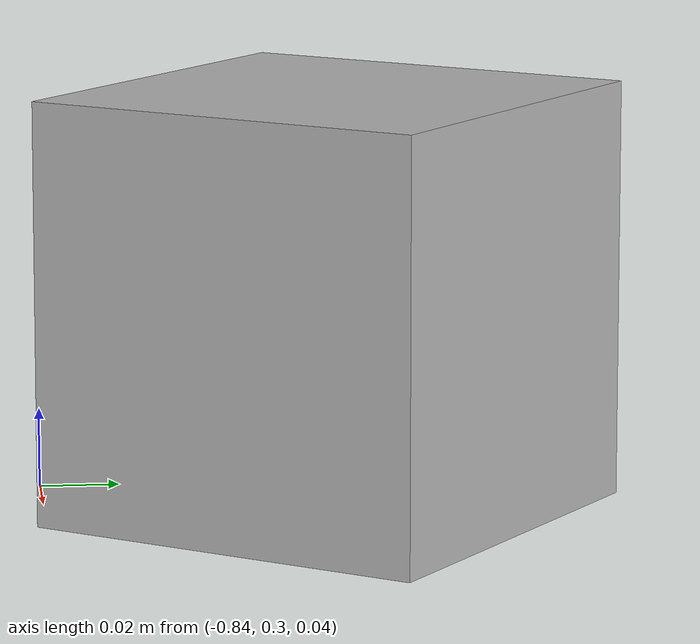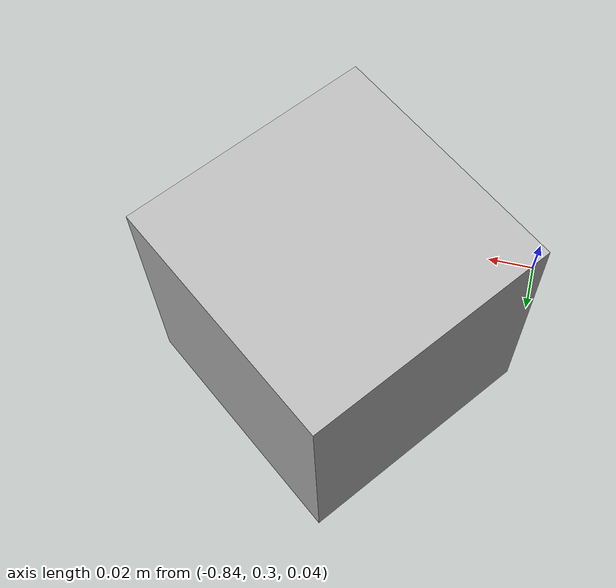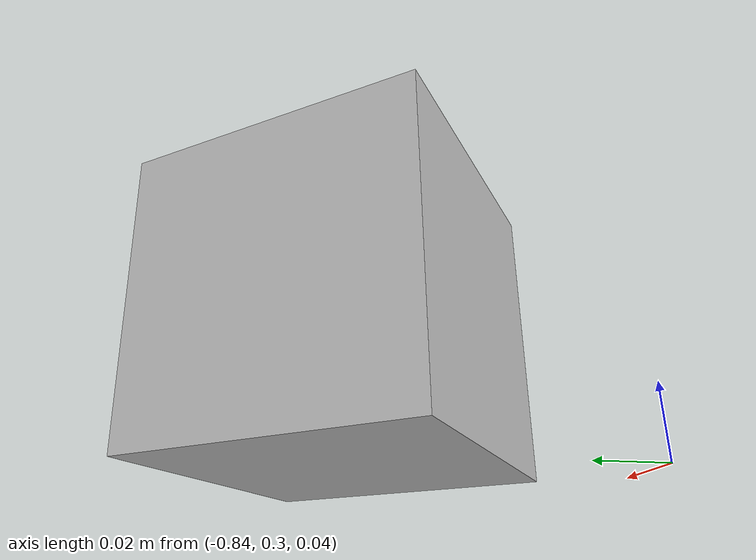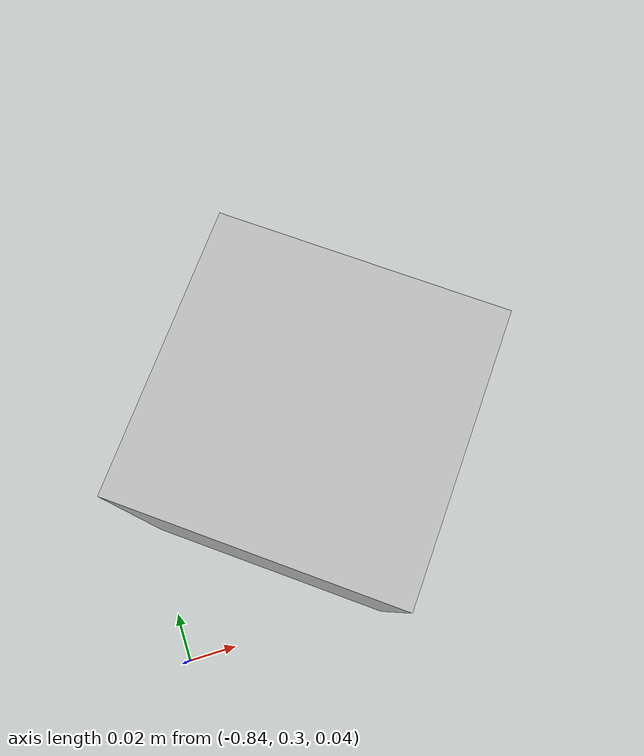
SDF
<?xml version="1.0" ?>
<sdf version="1.4">

  <model name="camera">
    <static>true</static>
    <link name="link">
      <pose>-0.7662 0.366 0.1 0.000013 0.000013 0.922770</pose>
      <inertial>
        <mass>0.1</mass>
      </inertial>
      <collision name="collision">
        <geometry>
          <box>
            <size>0.1 0.1 0.1</size>
          </box>
        </geometry>
      </collision>
      <visual name="visual">
        <geometry>
          <box>
            <size>0.1 0.1 0.1</size>
          </box>
        </geometry>
      </visual>
      <sensor name="camera" type="camera">
        <camera>
          <horizontal_fov>1.047</horizontal_fov>
          <image>
            <width>1440</width>
            <height>1080</height>
          </image>
          <clip>
            <near>0.001</near>
            <far>100</far>
          </clip>
          <save enabled="true">
            <path>/temp/</path>
          </save>
        </camera>
        <always_on>1</always_on>
        <update_rate>5</update_rate>
        <visualize>true</visualize>
      </sensor>
    </link>
  </model>

</sdf>
